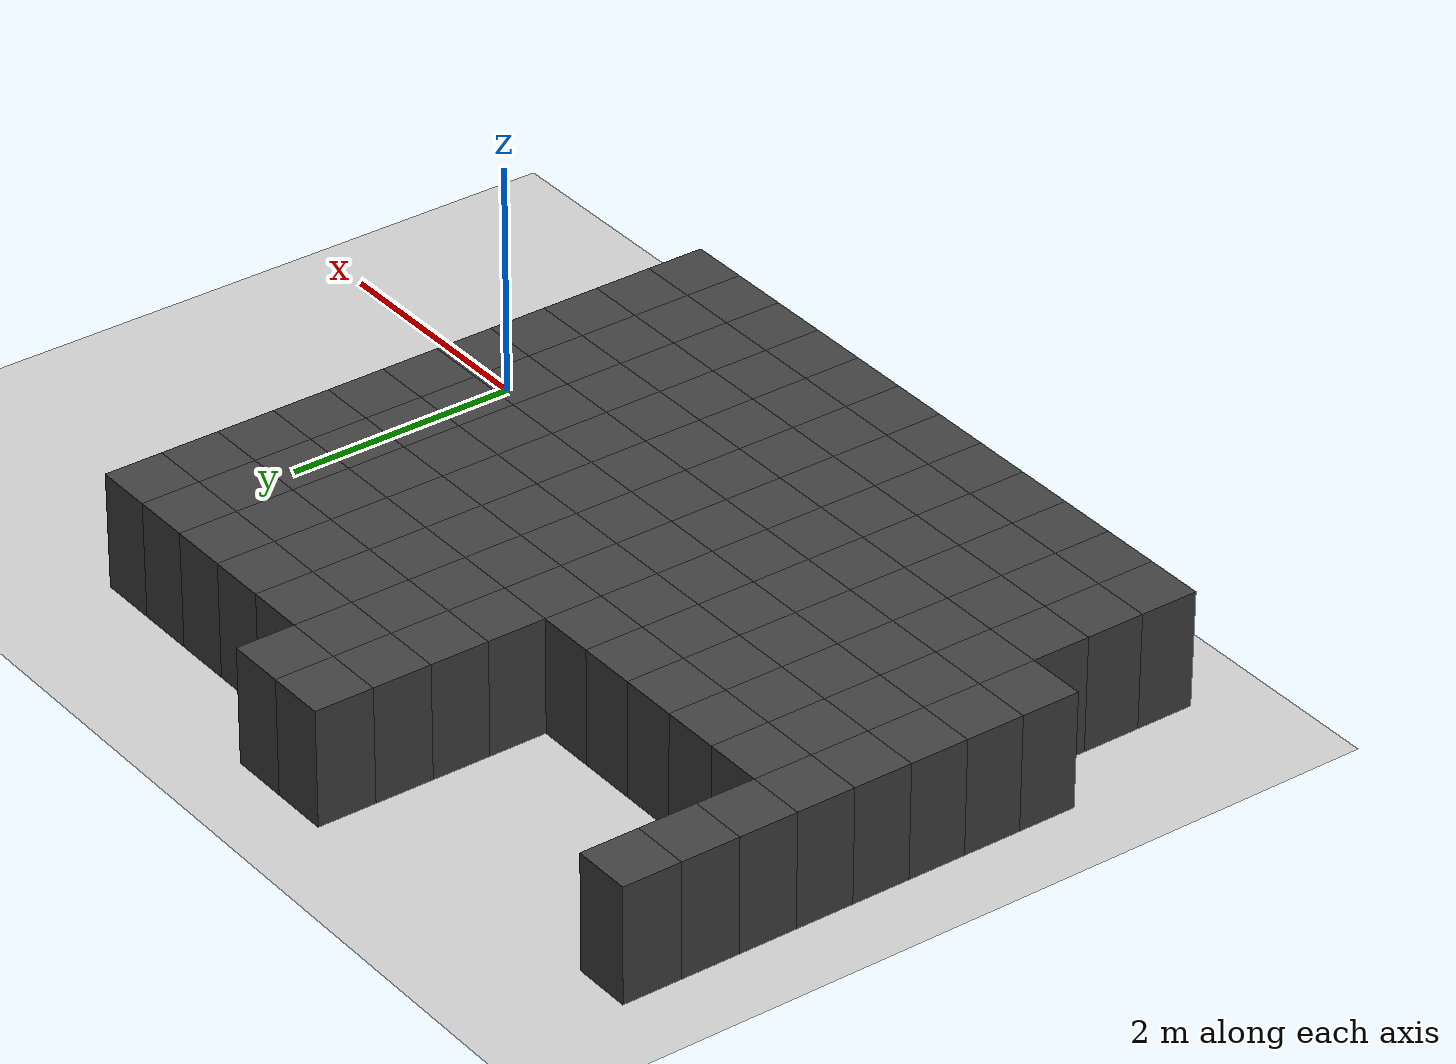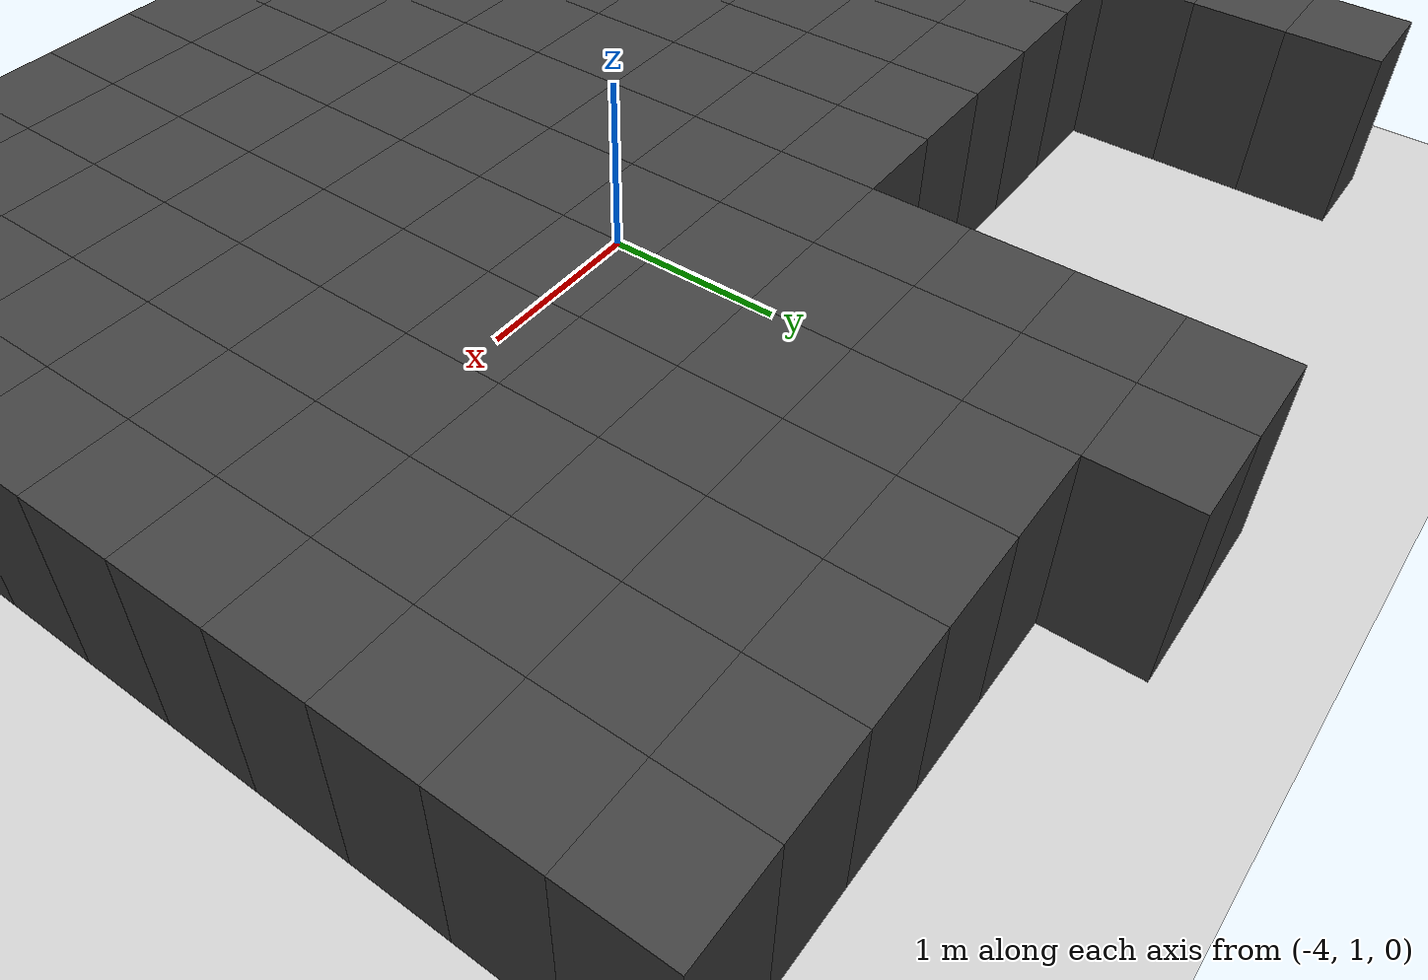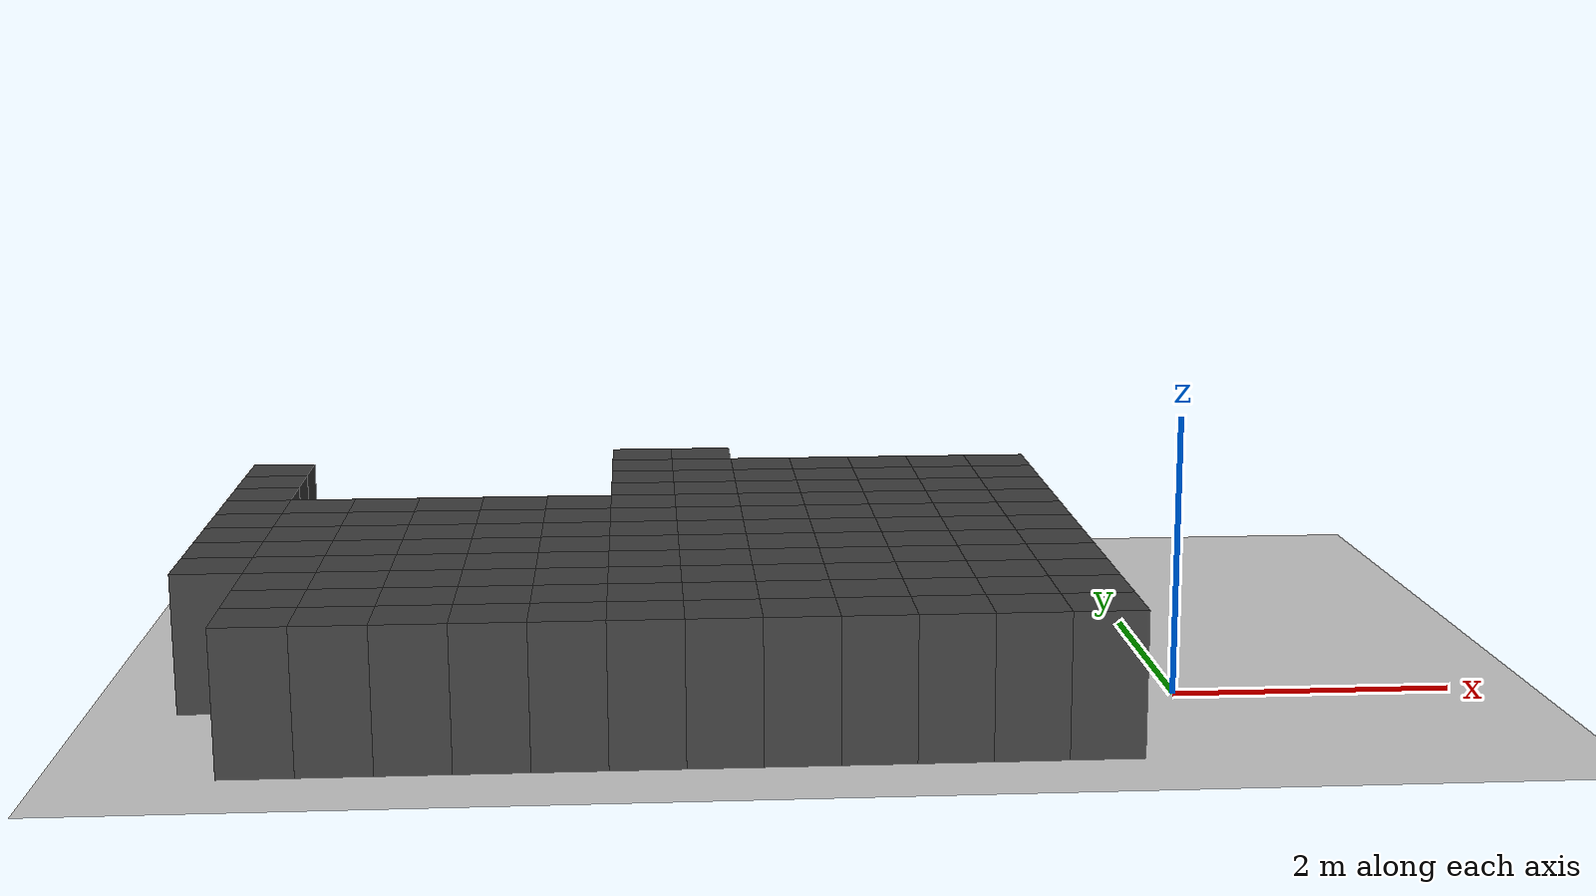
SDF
<sdf version="1.7">
 <world name="map_11672">
  <model name="ground_plane">
   <static>true</static>
   <link name="link">
    <collision name="collision">
     <geometry><plane><normal>0 0 1</normal><size>200 200</size></plane></geometry>
    </collision>
    <visual name="visual">
     <geometry><plane><normal>0 0 1</normal><size>200 200</size></plane></geometry>
     <material><ambient>0.8 0.8 0.8 1</ambient><diffuse>0.8 0.8 0.8 1</diffuse></material>
    </visual>
   </link>
  </model>
  <model name="maze_environment">
   <static>true</static>
   <link name="wall_632">
    <pose>-3.750 4.250 0.500 0 0 0</pose>
    <collision name="col"><geometry><box><size>0.5 0.5 1.0</size></box></geometry></collision>
    <visual name="vis">
     <geometry><box><size>0.5 0.5 1.0</size></box></geometry>
     <material><ambient>0.15 0.15 0.15 1</ambient><diffuse>0.25 0.25 0.25 1</diffuse></material>
    </visual>
   </link>
   <link name="wall_633">
    <pose>-3.250 4.250 0.500 0 0 0</pose>
    <collision name="col"><geometry><box><size>0.5 0.5 1.0</size></box></geometry></collision>
    <visual name="vis">
     <geometry><box><size>0.5 0.5 1.0</size></box></geometry>
     <material><ambient>0.15 0.15 0.15 1</ambient><diffuse>0.25 0.25 0.25 1</diffuse></material>
    </visual>
   </link>
   <link name="wall_675">
    <pose>-6.750 3.750 0.500 0 0 0</pose>
    <collision name="col"><geometry><box><size>0.5 0.5 1.0</size></box></geometry></collision>
    <visual name="vis">
     <geometry><box><size>0.5 0.5 1.0</size></box></geometry>
     <material><ambient>0.15 0.15 0.15 1</ambient><diffuse>0.25 0.25 0.25 1</diffuse></material>
    </visual>
   </link>
   <link name="wall_676">
    <pose>-3.750 3.750 0.500 0 0 0</pose>
    <collision name="col"><geometry><box><size>0.5 0.5 1.0</size></box></geometry></collision>
    <visual name="vis">
     <geometry><box><size>0.5 0.5 1.0</size></box></geometry>
     <material><ambient>0.15 0.15 0.15 1</ambient><diffuse>0.25 0.25 0.25 1</diffuse></material>
    </visual>
   </link>
   <link name="wall_677">
    <pose>-3.250 3.750 0.500 0 0 0</pose>
    <collision name="col"><geometry><box><size>0.5 0.5 1.0</size></box></geometry></collision>
    <visual name="vis">
     <geometry><box><size>0.5 0.5 1.0</size></box></geometry>
     <material><ambient>0.15 0.15 0.15 1</ambient><diffuse>0.25 0.25 0.25 1</diffuse></material>
    </visual>
   </link>
   <link name="wall_678">
    <pose>-2.750 3.750 0.500 0 0 0</pose>
    <collision name="col"><geometry><box><size>0.5 0.5 1.0</size></box></geometry></collision>
    <visual name="vis">
     <geometry><box><size>0.5 0.5 1.0</size></box></geometry>
     <material><ambient>0.15 0.15 0.15 1</ambient><diffuse>0.25 0.25 0.25 1</diffuse></material>
    </visual>
   </link>
   <link name="wall_679">
    <pose>-2.250 3.750 0.500 0 0 0</pose>
    <collision name="col"><geometry><box><size>0.5 0.5 1.0</size></box></geometry></collision>
    <visual name="vis">
     <geometry><box><size>0.5 0.5 1.0</size></box></geometry>
     <material><ambient>0.15 0.15 0.15 1</ambient><diffuse>0.25 0.25 0.25 1</diffuse></material>
    </visual>
   </link>
   <link name="wall_680">
    <pose>-1.750 3.750 0.500 0 0 0</pose>
    <collision name="col"><geometry><box><size>0.5 0.5 1.0</size></box></geometry></collision>
    <visual name="vis">
     <geometry><box><size>0.5 0.5 1.0</size></box></geometry>
     <material><ambient>0.15 0.15 0.15 1</ambient><diffuse>0.25 0.25 0.25 1</diffuse></material>
    </visual>
   </link>
   <link name="wall_681">
    <pose>-1.250 3.750 0.500 0 0 0</pose>
    <collision name="col"><geometry><box><size>0.5 0.5 1.0</size></box></geometry></collision>
    <visual name="vis">
     <geometry><box><size>0.5 0.5 1.0</size></box></geometry>
     <material><ambient>0.15 0.15 0.15 1</ambient><diffuse>0.25 0.25 0.25 1</diffuse></material>
    </visual>
   </link>
   <link name="wall_682">
    <pose>-0.750 3.750 0.500 0 0 0</pose>
    <collision name="col"><geometry><box><size>0.5 0.5 1.0</size></box></geometry></collision>
    <visual name="vis">
     <geometry><box><size>0.5 0.5 1.0</size></box></geometry>
     <material><ambient>0.15 0.15 0.15 1</ambient><diffuse>0.25 0.25 0.25 1</diffuse></material>
    </visual>
   </link>
   <link name="wall_719">
    <pose>-6.750 3.250 0.500 0 0 0</pose>
    <collision name="col"><geometry><box><size>0.5 0.5 1.0</size></box></geometry></collision>
    <visual name="vis">
     <geometry><box><size>0.5 0.5 1.0</size></box></geometry>
     <material><ambient>0.15 0.15 0.15 1</ambient><diffuse>0.25 0.25 0.25 1</diffuse></material>
    </visual>
   </link>
   <link name="wall_720">
    <pose>-3.750 3.250 0.500 0 0 0</pose>
    <collision name="col"><geometry><box><size>0.5 0.5 1.0</size></box></geometry></collision>
    <visual name="vis">
     <geometry><box><size>0.5 0.5 1.0</size></box></geometry>
     <material><ambient>0.15 0.15 0.15 1</ambient><diffuse>0.25 0.25 0.25 1</diffuse></material>
    </visual>
   </link>
   <link name="wall_721">
    <pose>-3.250 3.250 0.500 0 0 0</pose>
    <collision name="col"><geometry><box><size>0.5 0.5 1.0</size></box></geometry></collision>
    <visual name="vis">
     <geometry><box><size>0.5 0.5 1.0</size></box></geometry>
     <material><ambient>0.15 0.15 0.15 1</ambient><diffuse>0.25 0.25 0.25 1</diffuse></material>
    </visual>
   </link>
   <link name="wall_722">
    <pose>-2.750 3.250 0.500 0 0 0</pose>
    <collision name="col"><geometry><box><size>0.5 0.5 1.0</size></box></geometry></collision>
    <visual name="vis">
     <geometry><box><size>0.5 0.5 1.0</size></box></geometry>
     <material><ambient>0.15 0.15 0.15 1</ambient><diffuse>0.25 0.25 0.25 1</diffuse></material>
    </visual>
   </link>
   <link name="wall_723">
    <pose>-2.250 3.250 0.500 0 0 0</pose>
    <collision name="col"><geometry><box><size>0.5 0.5 1.0</size></box></geometry></collision>
    <visual name="vis">
     <geometry><box><size>0.5 0.5 1.0</size></box></geometry>
     <material><ambient>0.15 0.15 0.15 1</ambient><diffuse>0.25 0.25 0.25 1</diffuse></material>
    </visual>
   </link>
   <link name="wall_724">
    <pose>-1.750 3.250 0.500 0 0 0</pose>
    <collision name="col"><geometry><box><size>0.5 0.5 1.0</size></box></geometry></collision>
    <visual name="vis">
     <geometry><box><size>0.5 0.5 1.0</size></box></geometry>
     <material><ambient>0.15 0.15 0.15 1</ambient><diffuse>0.25 0.25 0.25 1</diffuse></material>
    </visual>
   </link>
   <link name="wall_725">
    <pose>-1.250 3.250 0.500 0 0 0</pose>
    <collision name="col"><geometry><box><size>0.5 0.5 1.0</size></box></geometry></collision>
    <visual name="vis">
     <geometry><box><size>0.5 0.5 1.0</size></box></geometry>
     <material><ambient>0.15 0.15 0.15 1</ambient><diffuse>0.25 0.25 0.25 1</diffuse></material>
    </visual>
   </link>
   <link name="wall_726">
    <pose>-0.750 3.250 0.500 0 0 0</pose>
    <collision name="col"><geometry><box><size>0.5 0.5 1.0</size></box></geometry></collision>
    <visual name="vis">
     <geometry><box><size>0.5 0.5 1.0</size></box></geometry>
     <material><ambient>0.15 0.15 0.15 1</ambient><diffuse>0.25 0.25 0.25 1</diffuse></material>
    </visual>
   </link>
   <link name="wall_759">
    <pose>-6.750 2.750 0.500 0 0 0</pose>
    <collision name="col"><geometry><box><size>0.5 0.5 1.0</size></box></geometry></collision>
    <visual name="vis">
     <geometry><box><size>0.5 0.5 1.0</size></box></geometry>
     <material><ambient>0.15 0.15 0.15 1</ambient><diffuse>0.25 0.25 0.25 1</diffuse></material>
    </visual>
   </link>
   <link name="wall_760">
    <pose>-3.750 2.750 0.500 0 0 0</pose>
    <collision name="col"><geometry><box><size>0.5 0.5 1.0</size></box></geometry></collision>
    <visual name="vis">
     <geometry><box><size>0.5 0.5 1.0</size></box></geometry>
     <material><ambient>0.15 0.15 0.15 1</ambient><diffuse>0.25 0.25 0.25 1</diffuse></material>
    </visual>
   </link>
   <link name="wall_761">
    <pose>-3.250 2.750 0.500 0 0 0</pose>
    <collision name="col"><geometry><box><size>0.5 0.5 1.0</size></box></geometry></collision>
    <visual name="vis">
     <geometry><box><size>0.5 0.5 1.0</size></box></geometry>
     <material><ambient>0.15 0.15 0.15 1</ambient><diffuse>0.25 0.25 0.25 1</diffuse></material>
    </visual>
   </link>
   <link name="wall_762">
    <pose>-2.750 2.750 0.500 0 0 0</pose>
    <collision name="col"><geometry><box><size>0.5 0.5 1.0</size></box></geometry></collision>
    <visual name="vis">
     <geometry><box><size>0.5 0.5 1.0</size></box></geometry>
     <material><ambient>0.15 0.15 0.15 1</ambient><diffuse>0.25 0.25 0.25 1</diffuse></material>
    </visual>
   </link>
   <link name="wall_763">
    <pose>-2.250 2.750 0.500 0 0 0</pose>
    <collision name="col"><geometry><box><size>0.5 0.5 1.0</size></box></geometry></collision>
    <visual name="vis">
     <geometry><box><size>0.5 0.5 1.0</size></box></geometry>
     <material><ambient>0.15 0.15 0.15 1</ambient><diffuse>0.25 0.25 0.25 1</diffuse></material>
    </visual>
   </link>
   <link name="wall_764">
    <pose>-1.750 2.750 0.500 0 0 0</pose>
    <collision name="col"><geometry><box><size>0.5 0.5 1.0</size></box></geometry></collision>
    <visual name="vis">
     <geometry><box><size>0.5 0.5 1.0</size></box></geometry>
     <material><ambient>0.15 0.15 0.15 1</ambient><diffuse>0.25 0.25 0.25 1</diffuse></material>
    </visual>
   </link>
   <link name="wall_765">
    <pose>-1.250 2.750 0.500 0 0 0</pose>
    <collision name="col"><geometry><box><size>0.5 0.5 1.0</size></box></geometry></collision>
    <visual name="vis">
     <geometry><box><size>0.5 0.5 1.0</size></box></geometry>
     <material><ambient>0.15 0.15 0.15 1</ambient><diffuse>0.25 0.25 0.25 1</diffuse></material>
    </visual>
   </link>
   <link name="wall_766">
    <pose>-0.750 2.750 0.500 0 0 0</pose>
    <collision name="col"><geometry><box><size>0.5 0.5 1.0</size></box></geometry></collision>
    <visual name="vis">
     <geometry><box><size>0.5 0.5 1.0</size></box></geometry>
     <material><ambient>0.15 0.15 0.15 1</ambient><diffuse>0.25 0.25 0.25 1</diffuse></material>
    </visual>
   </link>
   <link name="wall_799">
    <pose>-6.750 2.250 0.500 0 0 0</pose>
    <collision name="col"><geometry><box><size>0.5 0.5 1.0</size></box></geometry></collision>
    <visual name="vis">
     <geometry><box><size>0.5 0.5 1.0</size></box></geometry>
     <material><ambient>0.15 0.15 0.15 1</ambient><diffuse>0.25 0.25 0.25 1</diffuse></material>
    </visual>
   </link>
   <link name="wall_800">
    <pose>-6.250 2.250 0.500 0 0 0</pose>
    <collision name="col"><geometry><box><size>0.5 0.5 1.0</size></box></geometry></collision>
    <visual name="vis">
     <geometry><box><size>0.5 0.5 1.0</size></box></geometry>
     <material><ambient>0.15 0.15 0.15 1</ambient><diffuse>0.25 0.25 0.25 1</diffuse></material>
    </visual>
   </link>
   <link name="wall_801">
    <pose>-5.750 2.250 0.500 0 0 0</pose>
    <collision name="col"><geometry><box><size>0.5 0.5 1.0</size></box></geometry></collision>
    <visual name="vis">
     <geometry><box><size>0.5 0.5 1.0</size></box></geometry>
     <material><ambient>0.15 0.15 0.15 1</ambient><diffuse>0.25 0.25 0.25 1</diffuse></material>
    </visual>
   </link>
   <link name="wall_802">
    <pose>-5.250 2.250 0.500 0 0 0</pose>
    <collision name="col"><geometry><box><size>0.5 0.5 1.0</size></box></geometry></collision>
    <visual name="vis">
     <geometry><box><size>0.5 0.5 1.0</size></box></geometry>
     <material><ambient>0.15 0.15 0.15 1</ambient><diffuse>0.25 0.25 0.25 1</diffuse></material>
    </visual>
   </link>
   <link name="wall_803">
    <pose>-4.750 2.250 0.500 0 0 0</pose>
    <collision name="col"><geometry><box><size>0.5 0.5 1.0</size></box></geometry></collision>
    <visual name="vis">
     <geometry><box><size>0.5 0.5 1.0</size></box></geometry>
     <material><ambient>0.15 0.15 0.15 1</ambient><diffuse>0.25 0.25 0.25 1</diffuse></material>
    </visual>
   </link>
   <link name="wall_804">
    <pose>-4.250 2.250 0.500 0 0 0</pose>
    <collision name="col"><geometry><box><size>0.5 0.5 1.0</size></box></geometry></collision>
    <visual name="vis">
     <geometry><box><size>0.5 0.5 1.0</size></box></geometry>
     <material><ambient>0.15 0.15 0.15 1</ambient><diffuse>0.25 0.25 0.25 1</diffuse></material>
    </visual>
   </link>
   <link name="wall_805">
    <pose>-3.750 2.250 0.500 0 0 0</pose>
    <collision name="col"><geometry><box><size>0.5 0.5 1.0</size></box></geometry></collision>
    <visual name="vis">
     <geometry><box><size>0.5 0.5 1.0</size></box></geometry>
     <material><ambient>0.15 0.15 0.15 1</ambient><diffuse>0.25 0.25 0.25 1</diffuse></material>
    </visual>
   </link>
   <link name="wall_806">
    <pose>-3.250 2.250 0.500 0 0 0</pose>
    <collision name="col"><geometry><box><size>0.5 0.5 1.0</size></box></geometry></collision>
    <visual name="vis">
     <geometry><box><size>0.5 0.5 1.0</size></box></geometry>
     <material><ambient>0.15 0.15 0.15 1</ambient><diffuse>0.25 0.25 0.25 1</diffuse></material>
    </visual>
   </link>
   <link name="wall_807">
    <pose>-2.750 2.250 0.500 0 0 0</pose>
    <collision name="col"><geometry><box><size>0.5 0.5 1.0</size></box></geometry></collision>
    <visual name="vis">
     <geometry><box><size>0.5 0.5 1.0</size></box></geometry>
     <material><ambient>0.15 0.15 0.15 1</ambient><diffuse>0.25 0.25 0.25 1</diffuse></material>
    </visual>
   </link>
   <link name="wall_808">
    <pose>-2.250 2.250 0.500 0 0 0</pose>
    <collision name="col"><geometry><box><size>0.5 0.5 1.0</size></box></geometry></collision>
    <visual name="vis">
     <geometry><box><size>0.5 0.5 1.0</size></box></geometry>
     <material><ambient>0.15 0.15 0.15 1</ambient><diffuse>0.25 0.25 0.25 1</diffuse></material>
    </visual>
   </link>
   <link name="wall_809">
    <pose>-1.750 2.250 0.500 0 0 0</pose>
    <collision name="col"><geometry><box><size>0.5 0.5 1.0</size></box></geometry></collision>
    <visual name="vis">
     <geometry><box><size>0.5 0.5 1.0</size></box></geometry>
     <material><ambient>0.15 0.15 0.15 1</ambient><diffuse>0.25 0.25 0.25 1</diffuse></material>
    </visual>
   </link>
   <link name="wall_810">
    <pose>-1.250 2.250 0.500 0 0 0</pose>
    <collision name="col"><geometry><box><size>0.5 0.5 1.0</size></box></geometry></collision>
    <visual name="vis">
     <geometry><box><size>0.5 0.5 1.0</size></box></geometry>
     <material><ambient>0.15 0.15 0.15 1</ambient><diffuse>0.25 0.25 0.25 1</diffuse></material>
    </visual>
   </link>
   <link name="wall_811">
    <pose>-0.750 2.250 0.500 0 0 0</pose>
    <collision name="col"><geometry><box><size>0.5 0.5 1.0</size></box></geometry></collision>
    <visual name="vis">
     <geometry><box><size>0.5 0.5 1.0</size></box></geometry>
     <material><ambient>0.15 0.15 0.15 1</ambient><diffuse>0.25 0.25 0.25 1</diffuse></material>
    </visual>
   </link>
   <link name="wall_844">
    <pose>-6.750 1.750 0.500 0 0 0</pose>
    <collision name="col"><geometry><box><size>0.5 0.5 1.0</size></box></geometry></collision>
    <visual name="vis">
     <geometry><box><size>0.5 0.5 1.0</size></box></geometry>
     <material><ambient>0.15 0.15 0.15 1</ambient><diffuse>0.25 0.25 0.25 1</diffuse></material>
    </visual>
   </link>
   <link name="wall_845">
    <pose>-6.250 1.750 0.500 0 0 0</pose>
    <collision name="col"><geometry><box><size>0.5 0.5 1.0</size></box></geometry></collision>
    <visual name="vis">
     <geometry><box><size>0.5 0.5 1.0</size></box></geometry>
     <material><ambient>0.15 0.15 0.15 1</ambient><diffuse>0.25 0.25 0.25 1</diffuse></material>
    </visual>
   </link>
   <link name="wall_846">
    <pose>-5.750 1.750 0.500 0 0 0</pose>
    <collision name="col"><geometry><box><size>0.5 0.5 1.0</size></box></geometry></collision>
    <visual name="vis">
     <geometry><box><size>0.5 0.5 1.0</size></box></geometry>
     <material><ambient>0.15 0.15 0.15 1</ambient><diffuse>0.25 0.25 0.25 1</diffuse></material>
    </visual>
   </link>
   <link name="wall_847">
    <pose>-5.250 1.750 0.500 0 0 0</pose>
    <collision name="col"><geometry><box><size>0.5 0.5 1.0</size></box></geometry></collision>
    <visual name="vis">
     <geometry><box><size>0.5 0.5 1.0</size></box></geometry>
     <material><ambient>0.15 0.15 0.15 1</ambient><diffuse>0.25 0.25 0.25 1</diffuse></material>
    </visual>
   </link>
   <link name="wall_848">
    <pose>-4.750 1.750 0.500 0 0 0</pose>
    <collision name="col"><geometry><box><size>0.5 0.5 1.0</size></box></geometry></collision>
    <visual name="vis">
     <geometry><box><size>0.5 0.5 1.0</size></box></geometry>
     <material><ambient>0.15 0.15 0.15 1</ambient><diffuse>0.25 0.25 0.25 1</diffuse></material>
    </visual>
   </link>
   <link name="wall_849">
    <pose>-4.250 1.750 0.500 0 0 0</pose>
    <collision name="col"><geometry><box><size>0.5 0.5 1.0</size></box></geometry></collision>
    <visual name="vis">
     <geometry><box><size>0.5 0.5 1.0</size></box></geometry>
     <material><ambient>0.15 0.15 0.15 1</ambient><diffuse>0.25 0.25 0.25 1</diffuse></material>
    </visual>
   </link>
   <link name="wall_850">
    <pose>-3.750 1.750 0.500 0 0 0</pose>
    <collision name="col"><geometry><box><size>0.5 0.5 1.0</size></box></geometry></collision>
    <visual name="vis">
     <geometry><box><size>0.5 0.5 1.0</size></box></geometry>
     <material><ambient>0.15 0.15 0.15 1</ambient><diffuse>0.25 0.25 0.25 1</diffuse></material>
    </visual>
   </link>
   <link name="wall_851">
    <pose>-3.250 1.750 0.500 0 0 0</pose>
    <collision name="col"><geometry><box><size>0.5 0.5 1.0</size></box></geometry></collision>
    <visual name="vis">
     <geometry><box><size>0.5 0.5 1.0</size></box></geometry>
     <material><ambient>0.15 0.15 0.15 1</ambient><diffuse>0.25 0.25 0.25 1</diffuse></material>
    </visual>
   </link>
   <link name="wall_852">
    <pose>-2.750 1.750 0.500 0 0 0</pose>
    <collision name="col"><geometry><box><size>0.5 0.5 1.0</size></box></geometry></collision>
    <visual name="vis">
     <geometry><box><size>0.5 0.5 1.0</size></box></geometry>
     <material><ambient>0.15 0.15 0.15 1</ambient><diffuse>0.25 0.25 0.25 1</diffuse></material>
    </visual>
   </link>
   <link name="wall_853">
    <pose>-2.250 1.750 0.500 0 0 0</pose>
    <collision name="col"><geometry><box><size>0.5 0.5 1.0</size></box></geometry></collision>
    <visual name="vis">
     <geometry><box><size>0.5 0.5 1.0</size></box></geometry>
     <material><ambient>0.15 0.15 0.15 1</ambient><diffuse>0.25 0.25 0.25 1</diffuse></material>
    </visual>
   </link>
   <link name="wall_854">
    <pose>-1.750 1.750 0.500 0 0 0</pose>
    <collision name="col"><geometry><box><size>0.5 0.5 1.0</size></box></geometry></collision>
    <visual name="vis">
     <geometry><box><size>0.5 0.5 1.0</size></box></geometry>
     <material><ambient>0.15 0.15 0.15 1</ambient><diffuse>0.25 0.25 0.25 1</diffuse></material>
    </visual>
   </link>
   <link name="wall_855">
    <pose>-1.250 1.750 0.500 0 0 0</pose>
    <collision name="col"><geometry><box><size>0.5 0.5 1.0</size></box></geometry></collision>
    <visual name="vis">
     <geometry><box><size>0.5 0.5 1.0</size></box></geometry>
     <material><ambient>0.15 0.15 0.15 1</ambient><diffuse>0.25 0.25 0.25 1</diffuse></material>
    </visual>
   </link>
   <link name="wall_856">
    <pose>-0.750 1.750 0.500 0 0 0</pose>
    <collision name="col"><geometry><box><size>0.5 0.5 1.0</size></box></geometry></collision>
    <visual name="vis">
     <geometry><box><size>0.5 0.5 1.0</size></box></geometry>
     <material><ambient>0.15 0.15 0.15 1</ambient><diffuse>0.25 0.25 0.25 1</diffuse></material>
    </visual>
   </link>
   <link name="wall_879">
    <pose>-6.750 1.250 0.500 0 0 0</pose>
    <collision name="col"><geometry><box><size>0.5 0.5 1.0</size></box></geometry></collision>
    <visual name="vis">
     <geometry><box><size>0.5 0.5 1.0</size></box></geometry>
     <material><ambient>0.15 0.15 0.15 1</ambient><diffuse>0.25 0.25 0.25 1</diffuse></material>
    </visual>
   </link>
   <link name="wall_880">
    <pose>-6.250 1.250 0.500 0 0 0</pose>
    <collision name="col"><geometry><box><size>0.5 0.5 1.0</size></box></geometry></collision>
    <visual name="vis">
     <geometry><box><size>0.5 0.5 1.0</size></box></geometry>
     <material><ambient>0.15 0.15 0.15 1</ambient><diffuse>0.25 0.25 0.25 1</diffuse></material>
    </visual>
   </link>
   <link name="wall_881">
    <pose>-5.750 1.250 0.500 0 0 0</pose>
    <collision name="col"><geometry><box><size>0.5 0.5 1.0</size></box></geometry></collision>
    <visual name="vis">
     <geometry><box><size>0.5 0.5 1.0</size></box></geometry>
     <material><ambient>0.15 0.15 0.15 1</ambient><diffuse>0.25 0.25 0.25 1</diffuse></material>
    </visual>
   </link>
   <link name="wall_882">
    <pose>-5.250 1.250 0.500 0 0 0</pose>
    <collision name="col"><geometry><box><size>0.5 0.5 1.0</size></box></geometry></collision>
    <visual name="vis">
     <geometry><box><size>0.5 0.5 1.0</size></box></geometry>
     <material><ambient>0.15 0.15 0.15 1</ambient><diffuse>0.25 0.25 0.25 1</diffuse></material>
    </visual>
   </link>
   <link name="wall_883">
    <pose>-4.750 1.250 0.500 0 0 0</pose>
    <collision name="col"><geometry><box><size>0.5 0.5 1.0</size></box></geometry></collision>
    <visual name="vis">
     <geometry><box><size>0.5 0.5 1.0</size></box></geometry>
     <material><ambient>0.15 0.15 0.15 1</ambient><diffuse>0.25 0.25 0.25 1</diffuse></material>
    </visual>
   </link>
   <link name="wall_884">
    <pose>-4.250 1.250 0.500 0 0 0</pose>
    <collision name="col"><geometry><box><size>0.5 0.5 1.0</size></box></geometry></collision>
    <visual name="vis">
     <geometry><box><size>0.5 0.5 1.0</size></box></geometry>
     <material><ambient>0.15 0.15 0.15 1</ambient><diffuse>0.25 0.25 0.25 1</diffuse></material>
    </visual>
   </link>
   <link name="wall_885">
    <pose>-3.750 1.250 0.500 0 0 0</pose>
    <collision name="col"><geometry><box><size>0.5 0.5 1.0</size></box></geometry></collision>
    <visual name="vis">
     <geometry><box><size>0.5 0.5 1.0</size></box></geometry>
     <material><ambient>0.15 0.15 0.15 1</ambient><diffuse>0.25 0.25 0.25 1</diffuse></material>
    </visual>
   </link>
   <link name="wall_886">
    <pose>-3.250 1.250 0.500 0 0 0</pose>
    <collision name="col"><geometry><box><size>0.5 0.5 1.0</size></box></geometry></collision>
    <visual name="vis">
     <geometry><box><size>0.5 0.5 1.0</size></box></geometry>
     <material><ambient>0.15 0.15 0.15 1</ambient><diffuse>0.25 0.25 0.25 1</diffuse></material>
    </visual>
   </link>
   <link name="wall_887">
    <pose>-2.750 1.250 0.500 0 0 0</pose>
    <collision name="col"><geometry><box><size>0.5 0.5 1.0</size></box></geometry></collision>
    <visual name="vis">
     <geometry><box><size>0.5 0.5 1.0</size></box></geometry>
     <material><ambient>0.15 0.15 0.15 1</ambient><diffuse>0.25 0.25 0.25 1</diffuse></material>
    </visual>
   </link>
   <link name="wall_888">
    <pose>-2.250 1.250 0.500 0 0 0</pose>
    <collision name="col"><geometry><box><size>0.5 0.5 1.0</size></box></geometry></collision>
    <visual name="vis">
     <geometry><box><size>0.5 0.5 1.0</size></box></geometry>
     <material><ambient>0.15 0.15 0.15 1</ambient><diffuse>0.25 0.25 0.25 1</diffuse></material>
    </visual>
   </link>
   <link name="wall_889">
    <pose>-1.750 1.250 0.500 0 0 0</pose>
    <collision name="col"><geometry><box><size>0.5 0.5 1.0</size></box></geometry></collision>
    <visual name="vis">
     <geometry><box><size>0.5 0.5 1.0</size></box></geometry>
     <material><ambient>0.15 0.15 0.15 1</ambient><diffuse>0.25 0.25 0.25 1</diffuse></material>
    </visual>
   </link>
   <link name="wall_890">
    <pose>-1.250 1.250 0.500 0 0 0</pose>
    <collision name="col"><geometry><box><size>0.5 0.5 1.0</size></box></geometry></collision>
    <visual name="vis">
     <geometry><box><size>0.5 0.5 1.0</size></box></geometry>
     <material><ambient>0.15 0.15 0.15 1</ambient><diffuse>0.25 0.25 0.25 1</diffuse></material>
    </visual>
   </link>
   <link name="wall_891">
    <pose>-0.750 1.250 0.500 0 0 0</pose>
    <collision name="col"><geometry><box><size>0.5 0.5 1.0</size></box></geometry></collision>
    <visual name="vis">
     <geometry><box><size>0.5 0.5 1.0</size></box></geometry>
     <material><ambient>0.15 0.15 0.15 1</ambient><diffuse>0.25 0.25 0.25 1</diffuse></material>
    </visual>
   </link>
   <link name="wall_924">
    <pose>-6.750 0.750 0.500 0 0 0</pose>
    <collision name="col"><geometry><box><size>0.5 0.5 1.0</size></box></geometry></collision>
    <visual name="vis">
     <geometry><box><size>0.5 0.5 1.0</size></box></geometry>
     <material><ambient>0.15 0.15 0.15 1</ambient><diffuse>0.25 0.25 0.25 1</diffuse></material>
    </visual>
   </link>
   <link name="wall_925">
    <pose>-6.250 0.750 0.500 0 0 0</pose>
    <collision name="col"><geometry><box><size>0.5 0.5 1.0</size></box></geometry></collision>
    <visual name="vis">
     <geometry><box><size>0.5 0.5 1.0</size></box></geometry>
     <material><ambient>0.15 0.15 0.15 1</ambient><diffuse>0.25 0.25 0.25 1</diffuse></material>
    </visual>
   </link>
   <link name="wall_926">
    <pose>-5.750 0.750 0.500 0 0 0</pose>
    <collision name="col"><geometry><box><size>0.5 0.5 1.0</size></box></geometry></collision>
    <visual name="vis">
     <geometry><box><size>0.5 0.5 1.0</size></box></geometry>
     <material><ambient>0.15 0.15 0.15 1</ambient><diffuse>0.25 0.25 0.25 1</diffuse></material>
    </visual>
   </link>
   <link name="wall_927">
    <pose>-5.250 0.750 0.500 0 0 0</pose>
    <collision name="col"><geometry><box><size>0.5 0.5 1.0</size></box></geometry></collision>
    <visual name="vis">
     <geometry><box><size>0.5 0.5 1.0</size></box></geometry>
     <material><ambient>0.15 0.15 0.15 1</ambient><diffuse>0.25 0.25 0.25 1</diffuse></material>
    </visual>
   </link>
   <link name="wall_928">
    <pose>-4.750 0.750 0.500 0 0 0</pose>
    <collision name="col"><geometry><box><size>0.5 0.5 1.0</size></box></geometry></collision>
    <visual name="vis">
     <geometry><box><size>0.5 0.5 1.0</size></box></geometry>
     <material><ambient>0.15 0.15 0.15 1</ambient><diffuse>0.25 0.25 0.25 1</diffuse></material>
    </visual>
   </link>
   <link name="wall_929">
    <pose>-4.250 0.750 0.500 0 0 0</pose>
    <collision name="col"><geometry><box><size>0.5 0.5 1.0</size></box></geometry></collision>
    <visual name="vis">
     <geometry><box><size>0.5 0.5 1.0</size></box></geometry>
     <material><ambient>0.15 0.15 0.15 1</ambient><diffuse>0.25 0.25 0.25 1</diffuse></material>
    </visual>
   </link>
   <link name="wall_930">
    <pose>-3.750 0.750 0.500 0 0 0</pose>
    <collision name="col"><geometry><box><size>0.5 0.5 1.0</size></box></geometry></collision>
    <visual name="vis">
     <geometry><box><size>0.5 0.5 1.0</size></box></geometry>
     <material><ambient>0.15 0.15 0.15 1</ambient><diffuse>0.25 0.25 0.25 1</diffuse></material>
    </visual>
   </link>
   <link name="wall_931">
    <pose>-3.250 0.750 0.500 0 0 0</pose>
    <collision name="col"><geometry><box><size>0.5 0.5 1.0</size></box></geometry></collision>
    <visual name="vis">
     <geometry><box><size>0.5 0.5 1.0</size></box></geometry>
     <material><ambient>0.15 0.15 0.15 1</ambient><diffuse>0.25 0.25 0.25 1</diffuse></material>
    </visual>
   </link>
   <link name="wall_932">
    <pose>-2.750 0.750 0.500 0 0 0</pose>
    <collision name="col"><geometry><box><size>0.5 0.5 1.0</size></box></geometry></collision>
    <visual name="vis">
     <geometry><box><size>0.5 0.5 1.0</size></box></geometry>
     <material><ambient>0.15 0.15 0.15 1</ambient><diffuse>0.25 0.25 0.25 1</diffuse></material>
    </visual>
   </link>
   <link name="wall_933">
    <pose>-2.250 0.750 0.500 0 0 0</pose>
    <collision name="col"><geometry><box><size>0.5 0.5 1.0</size></box></geometry></collision>
    <visual name="vis">
     <geometry><box><size>0.5 0.5 1.0</size></box></geometry>
     <material><ambient>0.15 0.15 0.15 1</ambient><diffuse>0.25 0.25 0.25 1</diffuse></material>
    </visual>
   </link>
   <link name="wall_934">
    <pose>-1.750 0.750 0.500 0 0 0</pose>
    <collision name="col"><geometry><box><size>0.5 0.5 1.0</size></box></geometry></collision>
    <visual name="vis">
     <geometry><box><size>0.5 0.5 1.0</size></box></geometry>
     <material><ambient>0.15 0.15 0.15 1</ambient><diffuse>0.25 0.25 0.25 1</diffuse></material>
    </visual>
   </link>
   <link name="wall_935">
    <pose>-1.250 0.750 0.500 0 0 0</pose>
    <collision name="col"><geometry><box><size>0.5 0.5 1.0</size></box></geometry></collision>
    <visual name="vis">
     <geometry><box><size>0.5 0.5 1.0</size></box></geometry>
     <material><ambient>0.15 0.15 0.15 1</ambient><diffuse>0.25 0.25 0.25 1</diffuse></material>
    </visual>
   </link>
   <link name="wall_936">
    <pose>-0.750 0.750 0.500 0 0 0</pose>
    <collision name="col"><geometry><box><size>0.5 0.5 1.0</size></box></geometry></collision>
    <visual name="vis">
     <geometry><box><size>0.5 0.5 1.0</size></box></geometry>
     <material><ambient>0.15 0.15 0.15 1</ambient><diffuse>0.25 0.25 0.25 1</diffuse></material>
    </visual>
   </link>
   <link name="wall_969">
    <pose>-6.750 0.250 0.500 0 0 0</pose>
    <collision name="col"><geometry><box><size>0.5 0.5 1.0</size></box></geometry></collision>
    <visual name="vis">
     <geometry><box><size>0.5 0.5 1.0</size></box></geometry>
     <material><ambient>0.15 0.15 0.15 1</ambient><diffuse>0.25 0.25 0.25 1</diffuse></material>
    </visual>
   </link>
   <link name="wall_970">
    <pose>-6.250 0.250 0.500 0 0 0</pose>
    <collision name="col"><geometry><box><size>0.5 0.5 1.0</size></box></geometry></collision>
    <visual name="vis">
     <geometry><box><size>0.5 0.5 1.0</size></box></geometry>
     <material><ambient>0.15 0.15 0.15 1</ambient><diffuse>0.25 0.25 0.25 1</diffuse></material>
    </visual>
   </link>
   <link name="wall_971">
    <pose>-5.750 0.250 0.500 0 0 0</pose>
    <collision name="col"><geometry><box><size>0.5 0.5 1.0</size></box></geometry></collision>
    <visual name="vis">
     <geometry><box><size>0.5 0.5 1.0</size></box></geometry>
     <material><ambient>0.15 0.15 0.15 1</ambient><diffuse>0.25 0.25 0.25 1</diffuse></material>
    </visual>
   </link>
   <link name="wall_972">
    <pose>-5.250 0.250 0.500 0 0 0</pose>
    <collision name="col"><geometry><box><size>0.5 0.5 1.0</size></box></geometry></collision>
    <visual name="vis">
     <geometry><box><size>0.5 0.5 1.0</size></box></geometry>
     <material><ambient>0.15 0.15 0.15 1</ambient><diffuse>0.25 0.25 0.25 1</diffuse></material>
    </visual>
   </link>
   <link name="wall_973">
    <pose>-4.750 0.250 0.500 0 0 0</pose>
    <collision name="col"><geometry><box><size>0.5 0.5 1.0</size></box></geometry></collision>
    <visual name="vis">
     <geometry><box><size>0.5 0.5 1.0</size></box></geometry>
     <material><ambient>0.15 0.15 0.15 1</ambient><diffuse>0.25 0.25 0.25 1</diffuse></material>
    </visual>
   </link>
   <link name="wall_974">
    <pose>-4.250 0.250 0.500 0 0 0</pose>
    <collision name="col"><geometry><box><size>0.5 0.5 1.0</size></box></geometry></collision>
    <visual name="vis">
     <geometry><box><size>0.5 0.5 1.0</size></box></geometry>
     <material><ambient>0.15 0.15 0.15 1</ambient><diffuse>0.25 0.25 0.25 1</diffuse></material>
    </visual>
   </link>
   <link name="wall_975">
    <pose>-3.750 0.250 0.500 0 0 0</pose>
    <collision name="col"><geometry><box><size>0.5 0.5 1.0</size></box></geometry></collision>
    <visual name="vis">
     <geometry><box><size>0.5 0.5 1.0</size></box></geometry>
     <material><ambient>0.15 0.15 0.15 1</ambient><diffuse>0.25 0.25 0.25 1</diffuse></material>
    </visual>
   </link>
   <link name="wall_976">
    <pose>-3.250 0.250 0.500 0 0 0</pose>
    <collision name="col"><geometry><box><size>0.5 0.5 1.0</size></box></geometry></collision>
    <visual name="vis">
     <geometry><box><size>0.5 0.5 1.0</size></box></geometry>
     <material><ambient>0.15 0.15 0.15 1</ambient><diffuse>0.25 0.25 0.25 1</diffuse></material>
    </visual>
   </link>
   <link name="wall_977">
    <pose>-2.750 0.250 0.500 0 0 0</pose>
    <collision name="col"><geometry><box><size>0.5 0.5 1.0</size></box></geometry></collision>
    <visual name="vis">
     <geometry><box><size>0.5 0.5 1.0</size></box></geometry>
     <material><ambient>0.15 0.15 0.15 1</ambient><diffuse>0.25 0.25 0.25 1</diffuse></material>
    </visual>
   </link>
   <link name="wall_978">
    <pose>-2.250 0.250 0.500 0 0 0</pose>
    <collision name="col"><geometry><box><size>0.5 0.5 1.0</size></box></geometry></collision>
    <visual name="vis">
     <geometry><box><size>0.5 0.5 1.0</size></box></geometry>
     <material><ambient>0.15 0.15 0.15 1</ambient><diffuse>0.25 0.25 0.25 1</diffuse></material>
    </visual>
   </link>
   <link name="wall_979">
    <pose>-1.750 0.250 0.500 0 0 0</pose>
    <collision name="col"><geometry><box><size>0.5 0.5 1.0</size></box></geometry></collision>
    <visual name="vis">
     <geometry><box><size>0.5 0.5 1.0</size></box></geometry>
     <material><ambient>0.15 0.15 0.15 1</ambient><diffuse>0.25 0.25 0.25 1</diffuse></material>
    </visual>
   </link>
   <link name="wall_980">
    <pose>-1.250 0.250 0.500 0 0 0</pose>
    <collision name="col"><geometry><box><size>0.5 0.5 1.0</size></box></geometry></collision>
    <visual name="vis">
     <geometry><box><size>0.5 0.5 1.0</size></box></geometry>
     <material><ambient>0.15 0.15 0.15 1</ambient><diffuse>0.25 0.25 0.25 1</diffuse></material>
    </visual>
   </link>
   <link name="wall_981">
    <pose>-0.750 0.250 0.500 0 0 0</pose>
    <collision name="col"><geometry><box><size>0.5 0.5 1.0</size></box></geometry></collision>
    <visual name="vis">
     <geometry><box><size>0.5 0.5 1.0</size></box></geometry>
     <material><ambient>0.15 0.15 0.15 1</ambient><diffuse>0.25 0.25 0.25 1</diffuse></material>
    </visual>
   </link>
   <link name="wall_1015">
    <pose>-6.250 -0.250 0.500 0 0 0</pose>
    <collision name="col"><geometry><box><size>0.5 0.5 1.0</size></box></geometry></collision>
    <visual name="vis">
     <geometry><box><size>0.5 0.5 1.0</size></box></geometry>
     <material><ambient>0.15 0.15 0.15 1</ambient><diffuse>0.25 0.25 0.25 1</diffuse></material>
    </visual>
   </link>
   <link name="wall_1016">
    <pose>-5.750 -0.250 0.500 0 0 0</pose>
    <collision name="col"><geometry><box><size>0.5 0.5 1.0</size></box></geometry></collision>
    <visual name="vis">
     <geometry><box><size>0.5 0.5 1.0</size></box></geometry>
     <material><ambient>0.15 0.15 0.15 1</ambient><diffuse>0.25 0.25 0.25 1</diffuse></material>
    </visual>
   </link>
   <link name="wall_1017">
    <pose>-5.250 -0.250 0.500 0 0 0</pose>
    <collision name="col"><geometry><box><size>0.5 0.5 1.0</size></box></geometry></collision>
    <visual name="vis">
     <geometry><box><size>0.5 0.5 1.0</size></box></geometry>
     <material><ambient>0.15 0.15 0.15 1</ambient><diffuse>0.25 0.25 0.25 1</diffuse></material>
    </visual>
   </link>
   <link name="wall_1018">
    <pose>-4.750 -0.250 0.500 0 0 0</pose>
    <collision name="col"><geometry><box><size>0.5 0.5 1.0</size></box></geometry></collision>
    <visual name="vis">
     <geometry><box><size>0.5 0.5 1.0</size></box></geometry>
     <material><ambient>0.15 0.15 0.15 1</ambient><diffuse>0.25 0.25 0.25 1</diffuse></material>
    </visual>
   </link>
   <link name="wall_1019">
    <pose>-4.250 -0.250 0.500 0 0 0</pose>
    <collision name="col"><geometry><box><size>0.5 0.5 1.0</size></box></geometry></collision>
    <visual name="vis">
     <geometry><box><size>0.5 0.5 1.0</size></box></geometry>
     <material><ambient>0.15 0.15 0.15 1</ambient><diffuse>0.25 0.25 0.25 1</diffuse></material>
    </visual>
   </link>
   <link name="wall_1020">
    <pose>-3.750 -0.250 0.500 0 0 0</pose>
    <collision name="col"><geometry><box><size>0.5 0.5 1.0</size></box></geometry></collision>
    <visual name="vis">
     <geometry><box><size>0.5 0.5 1.0</size></box></geometry>
     <material><ambient>0.15 0.15 0.15 1</ambient><diffuse>0.25 0.25 0.25 1</diffuse></material>
    </visual>
   </link>
   <link name="wall_1021">
    <pose>-3.250 -0.250 0.500 0 0 0</pose>
    <collision name="col"><geometry><box><size>0.5 0.5 1.0</size></box></geometry></collision>
    <visual name="vis">
     <geometry><box><size>0.5 0.5 1.0</size></box></geometry>
     <material><ambient>0.15 0.15 0.15 1</ambient><diffuse>0.25 0.25 0.25 1</diffuse></material>
    </visual>
   </link>
   <link name="wall_1022">
    <pose>-2.750 -0.250 0.500 0 0 0</pose>
    <collision name="col"><geometry><box><size>0.5 0.5 1.0</size></box></geometry></collision>
    <visual name="vis">
     <geometry><box><size>0.5 0.5 1.0</size></box></geometry>
     <material><ambient>0.15 0.15 0.15 1</ambient><diffuse>0.25 0.25 0.25 1</diffuse></material>
    </visual>
   </link>
   <link name="wall_1023">
    <pose>-2.250 -0.250 0.500 0 0 0</pose>
    <collision name="col"><geometry><box><size>0.5 0.5 1.0</size></box></geometry></collision>
    <visual name="vis">
     <geometry><box><size>0.5 0.5 1.0</size></box></geometry>
     <material><ambient>0.15 0.15 0.15 1</ambient><diffuse>0.25 0.25 0.25 1</diffuse></material>
    </visual>
   </link>
   <link name="wall_1024">
    <pose>-1.750 -0.250 0.500 0 0 0</pose>
    <collision name="col"><geometry><box><size>0.5 0.5 1.0</size></box></geometry></collision>
    <visual name="vis">
     <geometry><box><size>0.5 0.5 1.0</size></box></geometry>
     <material><ambient>0.15 0.15 0.15 1</ambient><diffuse>0.25 0.25 0.25 1</diffuse></material>
    </visual>
   </link>
   <link name="wall_1025">
    <pose>-1.250 -0.250 0.500 0 0 0</pose>
    <collision name="col"><geometry><box><size>0.5 0.5 1.0</size></box></geometry></collision>
    <visual name="vis">
     <geometry><box><size>0.5 0.5 1.0</size></box></geometry>
     <material><ambient>0.15 0.15 0.15 1</ambient><diffuse>0.25 0.25 0.25 1</diffuse></material>
    </visual>
   </link>
   <link name="wall_1026">
    <pose>-0.750 -0.250 0.500 0 0 0</pose>
    <collision name="col"><geometry><box><size>0.5 0.5 1.0</size></box></geometry></collision>
    <visual name="vis">
     <geometry><box><size>0.5 0.5 1.0</size></box></geometry>
     <material><ambient>0.15 0.15 0.15 1</ambient><diffuse>0.25 0.25 0.25 1</diffuse></material>
    </visual>
   </link>
   <link name="wall_1063">
    <pose>-6.250 -0.750 0.500 0 0 0</pose>
    <collision name="col"><geometry><box><size>0.5 0.5 1.0</size></box></geometry></collision>
    <visual name="vis">
     <geometry><box><size>0.5 0.5 1.0</size></box></geometry>
     <material><ambient>0.15 0.15 0.15 1</ambient><diffuse>0.25 0.25 0.25 1</diffuse></material>
    </visual>
   </link>
   <link name="wall_1064">
    <pose>-5.750 -0.750 0.500 0 0 0</pose>
    <collision name="col"><geometry><box><size>0.5 0.5 1.0</size></box></geometry></collision>
    <visual name="vis">
     <geometry><box><size>0.5 0.5 1.0</size></box></geometry>
     <material><ambient>0.15 0.15 0.15 1</ambient><diffuse>0.25 0.25 0.25 1</diffuse></material>
    </visual>
   </link>
   <link name="wall_1065">
    <pose>-5.250 -0.750 0.500 0 0 0</pose>
    <collision name="col"><geometry><box><size>0.5 0.5 1.0</size></box></geometry></collision>
    <visual name="vis">
     <geometry><box><size>0.5 0.5 1.0</size></box></geometry>
     <material><ambient>0.15 0.15 0.15 1</ambient><diffuse>0.25 0.25 0.25 1</diffuse></material>
    </visual>
   </link>
   <link name="wall_1066">
    <pose>-4.750 -0.750 0.500 0 0 0</pose>
    <collision name="col"><geometry><box><size>0.5 0.5 1.0</size></box></geometry></collision>
    <visual name="vis">
     <geometry><box><size>0.5 0.5 1.0</size></box></geometry>
     <material><ambient>0.15 0.15 0.15 1</ambient><diffuse>0.25 0.25 0.25 1</diffuse></material>
    </visual>
   </link>
   <link name="wall_1067">
    <pose>-4.250 -0.750 0.500 0 0 0</pose>
    <collision name="col"><geometry><box><size>0.5 0.5 1.0</size></box></geometry></collision>
    <visual name="vis">
     <geometry><box><size>0.5 0.5 1.0</size></box></geometry>
     <material><ambient>0.15 0.15 0.15 1</ambient><diffuse>0.25 0.25 0.25 1</diffuse></material>
    </visual>
   </link>
   <link name="wall_1068">
    <pose>-3.750 -0.750 0.500 0 0 0</pose>
    <collision name="col"><geometry><box><size>0.5 0.5 1.0</size></box></geometry></collision>
    <visual name="vis">
     <geometry><box><size>0.5 0.5 1.0</size></box></geometry>
     <material><ambient>0.15 0.15 0.15 1</ambient><diffuse>0.25 0.25 0.25 1</diffuse></material>
    </visual>
   </link>
   <link name="wall_1069">
    <pose>-3.250 -0.750 0.500 0 0 0</pose>
    <collision name="col"><geometry><box><size>0.5 0.5 1.0</size></box></geometry></collision>
    <visual name="vis">
     <geometry><box><size>0.5 0.5 1.0</size></box></geometry>
     <material><ambient>0.15 0.15 0.15 1</ambient><diffuse>0.25 0.25 0.25 1</diffuse></material>
    </visual>
   </link>
   <link name="wall_1070">
    <pose>-2.750 -0.750 0.500 0 0 0</pose>
    <collision name="col"><geometry><box><size>0.5 0.5 1.0</size></box></geometry></collision>
    <visual name="vis">
     <geometry><box><size>0.5 0.5 1.0</size></box></geometry>
     <material><ambient>0.15 0.15 0.15 1</ambient><diffuse>0.25 0.25 0.25 1</diffuse></material>
    </visual>
   </link>
   <link name="wall_1071">
    <pose>-2.250 -0.750 0.500 0 0 0</pose>
    <collision name="col"><geometry><box><size>0.5 0.5 1.0</size></box></geometry></collision>
    <visual name="vis">
     <geometry><box><size>0.5 0.5 1.0</size></box></geometry>
     <material><ambient>0.15 0.15 0.15 1</ambient><diffuse>0.25 0.25 0.25 1</diffuse></material>
    </visual>
   </link>
   <link name="wall_1072">
    <pose>-1.750 -0.750 0.500 0 0 0</pose>
    <collision name="col"><geometry><box><size>0.5 0.5 1.0</size></box></geometry></collision>
    <visual name="vis">
     <geometry><box><size>0.5 0.5 1.0</size></box></geometry>
     <material><ambient>0.15 0.15 0.15 1</ambient><diffuse>0.25 0.25 0.25 1</diffuse></material>
    </visual>
   </link>
   <link name="wall_1073">
    <pose>-1.250 -0.750 0.500 0 0 0</pose>
    <collision name="col"><geometry><box><size>0.5 0.5 1.0</size></box></geometry></collision>
    <visual name="vis">
     <geometry><box><size>0.5 0.5 1.0</size></box></geometry>
     <material><ambient>0.15 0.15 0.15 1</ambient><diffuse>0.25 0.25 0.25 1</diffuse></material>
    </visual>
   </link>
   <link name="wall_1074">
    <pose>-0.750 -0.750 0.500 0 0 0</pose>
    <collision name="col"><geometry><box><size>0.5 0.5 1.0</size></box></geometry></collision>
    <visual name="vis">
     <geometry><box><size>0.5 0.5 1.0</size></box></geometry>
     <material><ambient>0.15 0.15 0.15 1</ambient><diffuse>0.25 0.25 0.25 1</diffuse></material>
    </visual>
   </link>
   <link name="wall_1111">
    <pose>-6.250 -1.250 0.500 0 0 0</pose>
    <collision name="col"><geometry><box><size>0.5 0.5 1.0</size></box></geometry></collision>
    <visual name="vis">
     <geometry><box><size>0.5 0.5 1.0</size></box></geometry>
     <material><ambient>0.15 0.15 0.15 1</ambient><diffuse>0.25 0.25 0.25 1</diffuse></material>
    </visual>
   </link>
   <link name="wall_1112">
    <pose>-5.750 -1.250 0.500 0 0 0</pose>
    <collision name="col"><geometry><box><size>0.5 0.5 1.0</size></box></geometry></collision>
    <visual name="vis">
     <geometry><box><size>0.5 0.5 1.0</size></box></geometry>
     <material><ambient>0.15 0.15 0.15 1</ambient><diffuse>0.25 0.25 0.25 1</diffuse></material>
    </visual>
   </link>
   <link name="wall_1113">
    <pose>-5.250 -1.250 0.500 0 0 0</pose>
    <collision name="col"><geometry><box><size>0.5 0.5 1.0</size></box></geometry></collision>
    <visual name="vis">
     <geometry><box><size>0.5 0.5 1.0</size></box></geometry>
     <material><ambient>0.15 0.15 0.15 1</ambient><diffuse>0.25 0.25 0.25 1</diffuse></material>
    </visual>
   </link>
   <link name="wall_1114">
    <pose>-4.750 -1.250 0.500 0 0 0</pose>
    <collision name="col"><geometry><box><size>0.5 0.5 1.0</size></box></geometry></collision>
    <visual name="vis">
     <geometry><box><size>0.5 0.5 1.0</size></box></geometry>
     <material><ambient>0.15 0.15 0.15 1</ambient><diffuse>0.25 0.25 0.25 1</diffuse></material>
    </visual>
   </link>
   <link name="wall_1115">
    <pose>-4.250 -1.250 0.500 0 0 0</pose>
    <collision name="col"><geometry><box><size>0.5 0.5 1.0</size></box></geometry></collision>
    <visual name="vis">
     <geometry><box><size>0.5 0.5 1.0</size></box></geometry>
     <material><ambient>0.15 0.15 0.15 1</ambient><diffuse>0.25 0.25 0.25 1</diffuse></material>
    </visual>
   </link>
   <link name="wall_1116">
    <pose>-3.750 -1.250 0.500 0 0 0</pose>
    <collision name="col"><geometry><box><size>0.5 0.5 1.0</size></box></geometry></collision>
    <visual name="vis">
     <geometry><box><size>0.5 0.5 1.0</size></box></geometry>
     <material><ambient>0.15 0.15 0.15 1</ambient><diffuse>0.25 0.25 0.25 1</diffuse></material>
    </visual>
   </link>
   <link name="wall_1117">
    <pose>-3.250 -1.250 0.500 0 0 0</pose>
    <collision name="col"><geometry><box><size>0.5 0.5 1.0</size></box></geometry></collision>
    <visual name="vis">
     <geometry><box><size>0.5 0.5 1.0</size></box></geometry>
     <material><ambient>0.15 0.15 0.15 1</ambient><diffuse>0.25 0.25 0.25 1</diffuse></material>
    </visual>
   </link>
   <link name="wall_1118">
    <pose>-2.750 -1.250 0.500 0 0 0</pose>
    <collision name="col"><geometry><box><size>0.5 0.5 1.0</size></box></geometry></collision>
    <visual name="vis">
     <geometry><box><size>0.5 0.5 1.0</size></box></geometry>
     <material><ambient>0.15 0.15 0.15 1</ambient><diffuse>0.25 0.25 0.25 1</diffuse></material>
    </visual>
   </link>
   <link name="wall_1119">
    <pose>-2.250 -1.250 0.500 0 0 0</pose>
    <collision name="col"><geometry><box><size>0.5 0.5 1.0</size></box></geometry></collision>
    <visual name="vis">
     <geometry><box><size>0.5 0.5 1.0</size></box></geometry>
     <material><ambient>0.15 0.15 0.15 1</ambient><diffuse>0.25 0.25 0.25 1</diffuse></material>
    </visual>
   </link>
   <link name="wall_1120">
    <pose>-1.750 -1.250 0.500 0 0 0</pose>
    <collision name="col"><geometry><box><size>0.5 0.5 1.0</size></box></geometry></collision>
    <visual name="vis">
     <geometry><box><size>0.5 0.5 1.0</size></box></geometry>
     <material><ambient>0.15 0.15 0.15 1</ambient><diffuse>0.25 0.25 0.25 1</diffuse></material>
    </visual>
   </link>
   <link name="wall_1121">
    <pose>-1.250 -1.250 0.500 0 0 0</pose>
    <collision name="col"><geometry><box><size>0.5 0.5 1.0</size></box></geometry></collision>
    <visual name="vis">
     <geometry><box><size>0.5 0.5 1.0</size></box></geometry>
     <material><ambient>0.15 0.15 0.15 1</ambient><diffuse>0.25 0.25 0.25 1</diffuse></material>
    </visual>
   </link>
   <link name="wall_1122">
    <pose>-0.750 -1.250 0.500 0 0 0</pose>
    <collision name="col"><geometry><box><size>0.5 0.5 1.0</size></box></geometry></collision>
    <visual name="vis">
     <geometry><box><size>0.5 0.5 1.0</size></box></geometry>
     <material><ambient>0.15 0.15 0.15 1</ambient><diffuse>0.25 0.25 0.25 1</diffuse></material>
    </visual>
   </link>
  </model>
 </world>
</sdf>
